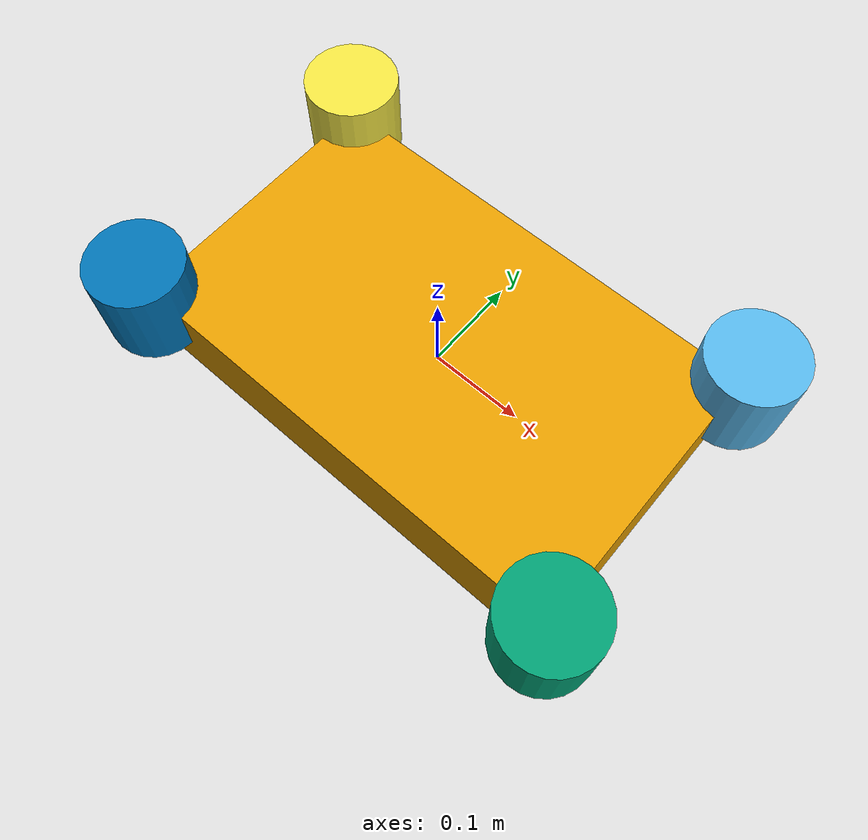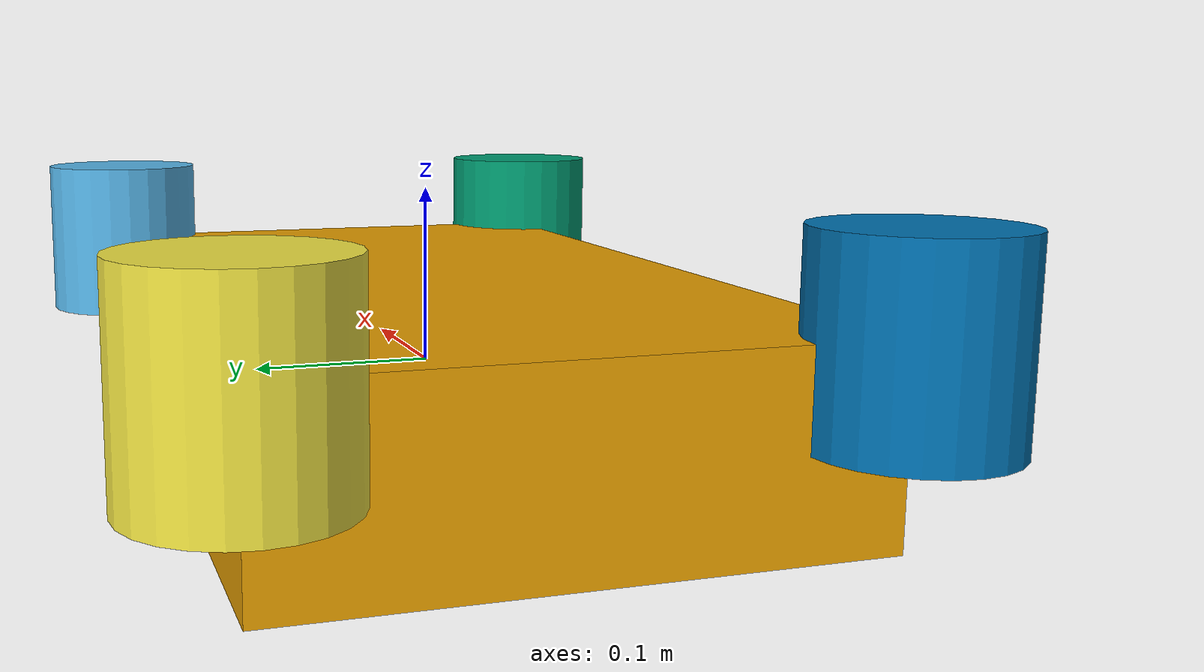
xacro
<?xml version="1.0"?>
<robot xmlns:xacro="http://www.ros.org/wiki/xacro" name="mobile_base">

    <!-- Define the base link -->
    <link name="base_link">
        <visual>
            <geometry>
                <box size="0.5 0.3 0.1"/>
            </geometry>
        </visual>
        <collision>
            <geometry>
                <box size="0.5 0.3 0.1"/>
            </geometry>
        </collision>
    </link>

    <!-- Define the wheels as a macro -->
    <xacro:macro name="wheel" params="name x y">
        <link name="${name}">
            <visual>
                <geometry>
                    <cylinder radius="0.05" length="0.1"/>
                </geometry>
            </visual>
            <collision>
                <geometry>
                    <cylinder radius="0.05" length="0.1"/>
                </geometry>
            </collision>
        </link>

        <joint name="${name}_joint" type="revolute">
            <parent link="base_link"/>
            <child link="${name}"/>
            <origin xyz="${x} ${y} 0.05" rpy="0 0 0"/>
            <axis xyz="0 0 1"/>
            <limit effort="50" velocity="5"/>
        </joint>
    </xacro:macro>

    <!-- Use the wheel macro for each wheel -->
    <xacro:wheel name="front_left_wheel" x="0.25" y="0.15"/>
    <xacro:wheel name="front_right_wheel" x="0.25" y="-0.15"/>
    <xacro:wheel name="rear_left_wheel" x="-0.25" y="0.15"/>
    <xacro:wheel name="rear_right_wheel" x="-0.25" y="-0.15"/>

</robot>
